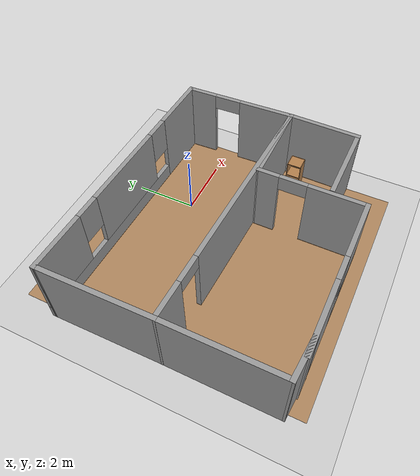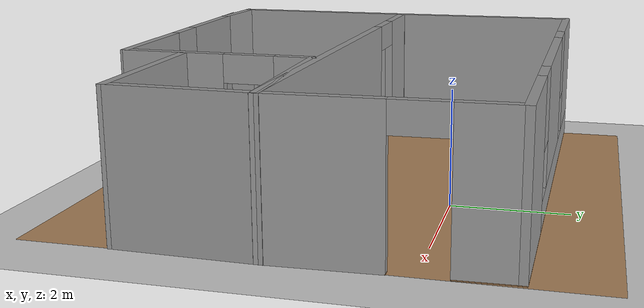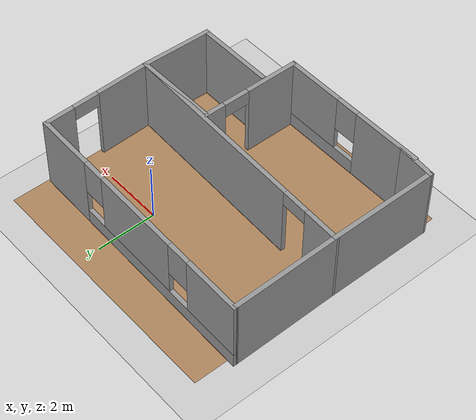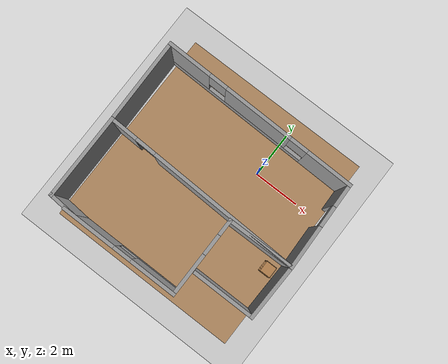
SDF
<sdf version="1.6">
 <world name="default">
  <light name="sun" type="directional">
   <pose>0 0 10 0 -0 0</pose>
   <diffuse>0.8 0.8 0.8 1</diffuse>
   <specular>0.1 0.1 0.1 1</specular>
   <attenuation>
    <range>1000</range>
    <constant>0.9</constant>
    <linear>0.01</linear>
    <quadratic>0.001</quadratic>
   </attenuation>
   <direction>-0.5 0.5 -1</direction>
  </light>
  <model name="ground_plane">
   <static>1</static>
   <link name="link">
    <collision name="collision">
     <geometry><plane><normal>0 0 1</normal><size>100 100</size></plane></geometry>
     <surface><friction><ode><mu>100</mu><mu2>50</mu2></ode></friction></surface>
    </collision>
    <visual name="visual">
     <cast_shadows>0</cast_shadows>
     <geometry><plane><normal>0 0 1</normal><size>100 100</size></plane></geometry>
     <material>
      <script><uri>file://media/materials/scripts/gazebo.material</uri><name>Gazebo/Grey</name></script>
     </material>
    </visual>
   </link>
  </model>
  <gravity>0 0 -9.8</gravity>
  <magnetic_field>6e-06 2.3e-05 -4.2e-05</magnetic_field>
  <atmosphere type="adiabatic"/>
  <physics name="default_physics" default="0" type="ode">
   <max_step_size>0.001</max_step_size>
   <real_time_factor>1</real_time_factor>
   <real_time_update_rate>1000</real_time_update_rate>
  </physics>
  <scene><ambient>0.4 0.4 0.4 1</ambient><background>0.7 0.7 0.7 1</background><shadows>1</shadows></scene>
  <spherical_coordinates>
   <surface_model>EARTH_WGS84</surface_model>
   <latitude_deg>0</latitude_deg>
   <longitude_deg>0</longitude_deg>
   <elevation>0</elevation>
   <heading_deg>0</heading_deg>
  </spherical_coordinates>
  <model name="1B1B">
   <pose>-1.21418 -2.03491 0 0 -0 0</pose>
   <link name="Wall_10">
    <collision name="Wall_10_Collision">
     <geometry><box><size>2.96621 0.15 2.5</size></box></geometry>
     <pose>0 0 1.25 0 -0 0</pose>
    </collision>
    <visual name="Wall_10_Visual">
     <pose>0 0 1.25 0 -0 0</pose>
     <geometry><box><size>2.96621 0.15 2.5</size></box></geometry>
     <material>
      <script><uri>file://media/materials/scripts/gazebo.material</uri><name>Gazebo/Grey</name></script>
      <ambient>1 1 1 1</ambient>
     </material>
    </visual>
    <pose>2.92153 -0.237835 0 0 -0 0.009263</pose>
   </link>
   <link name="Wall_11">
    <collision name="Wall_11_Collision">
     <geometry><box><size>2.46754 0.15 2.5</size></box></geometry>
     <pose>0 0 1.25 0 -0 0</pose>
    </collision>
    <visual name="Wall_11_Visual">
     <pose>0 0 1.25 0 -0 0</pose>
     <geometry><box><size>2.46754 0.15 2.5</size></box></geometry>
     <material>
      <script><uri>file://media/materials/scripts/gazebo.material</uri><name>Gazebo/Grey</name></script>
      <ambient>1 1 1 1</ambient>
     </material>
    </visual>
    <pose>4.30349 -1.38349 0 0 0 -1.59331</pose>
   </link>
   <link name="Wall_14">
    <pose>-1.03727 -3.64081 0 0 -0 0</pose>
    <visual name="Wall_14_Visual_0">
     <pose>-1.43077 0 1.25 0 -0 0</pose>
     <geometry><box><size>2.38845 0.15 2.5</size></box></geometry>
     <material>
      <script><uri>file://media/materials/scripts/gazebo.material</uri><name>Gazebo/Grey</name></script>
      <ambient>1 1 1 1</ambient>
     </material>
    </visual>
    <collision name="Wall_14_Collision_0">
     <geometry><box><size>2.38845 0.15 2.5</size></box></geometry>
     <pose>-1.43077 0 1.25 0 -0 0</pose>
    </collision>
    <visual name="Wall_14_Visual_1">
     <pose>1.19423 0 0.25 0 -0 0</pose>
     <geometry><box><size>2.86155 0.15 0.5</size></box></geometry>
     <material>
      <script><uri>file://media/materials/scripts/gazebo.material</uri><name>Gazebo/Grey</name></script>
      <ambient>1 1 1 1</ambient>
     </material>
    </visual>
    <collision name="Wall_14_Collision_1">
     <geometry><box><size>2.86155 0.15 0.5</size></box></geometry>
     <pose>1.19423 0 0.25 0 -0 0</pose>
    </collision>
    <visual name="Wall_14_Visual_2">
     <pose>1.59423 0 1.5 0 -0 0</pose>
     <geometry><box><size>2.06155 0.15 2</size></box></geometry>
     <material>
      <script><uri>file://media/materials/scripts/gazebo.material</uri><name>Gazebo/Grey</name></script>
      <ambient>1 1 1 1</ambient>
     </material>
    </visual>
    <collision name="Wall_14_Collision_2">
     <geometry><box><size>2.06155 0.15 2</size></box></geometry>
     <pose>1.59423 0 1.5 0 -0 0</pose>
    </collision>
    <visual name="Wall_14_Visual_3">
     <pose>0.163452 0 1.9 0 -0 0</pose>
     <geometry><box><size>0.8 0.15 1.2</size></box></geometry>
     <material>
      <script><uri>file://media/materials/scripts/gazebo.material</uri><name>Gazebo/Grey</name></script>
      <ambient>1 1 1 1</ambient>
     </material>
    </visual>
    <collision name="Wall_14_Collision_3">
     <geometry><box><size>0.8 0.15 1.2</size></box></geometry>
     <pose>0.163452 0 1.9 0 -0 0</pose>
    </collision>
   </link>
   <link name="Wall_16">
    <collision name="Wall_16_Collision">
     <geometry><box><size>2.75 0.15 2.5</size></box></geometry>
     <pose>0 0 1.25 0 -0 0</pose>
    </collision>
    <visual name="Wall_16_Visual">
     <pose>0 0 1.25 0 -0 0</pose>
     <geometry><box><size>2.75 0.15 2.5</size></box></geometry>
     <material>
      <script><uri>file://media/materials/scripts/gazebo.material</uri><name>Gazebo/Grey</name></script>
      <ambient>1 1 1 1</ambient>
     </material>
    </visual>
    <pose>2.9774 -2.54218 0 0 -0 3.14159</pose>
   </link>
   <link name="Wall_18">
    <collision name="Wall_18_Collision">
     <geometry><box><size>1.34723 0.15 2.5</size></box></geometry>
     <pose>0 0 1.25 0 -0 0</pose>
    </collision>
    <visual name="Wall_18_Visual">
     <pose>0 0 1.25 0 -0 0</pose>
     <geometry><box><size>1.34723 0.15 2.5</size></box></geometry>
     <material>
      <script><uri>file://media/materials/scripts/gazebo.material</uri><name>Gazebo/Grey</name></script>
      <ambient>1 1 1 1</ambient>
     </material>
    </visual>
    <pose>-3.68838 -3.59375 0 0 -0 3.06289</pose>
   </link>
   <link name="Wall_2">
    <pose>0.009174 -0.085736 0 0 0 -0.03237</pose>
    <visual name="Wall_2_Visual_0">
     <pose>-3.74047 0 1.25 0 -0 0</pose>
     <geometry><box><size>1.26219 0.15 2.5</size></box></geometry>
     <material>
      <script><uri>file://media/materials/scripts/gazebo.material</uri><name>Gazebo/Grey</name></script>
      <ambient>1 1 1 1</ambient>
     </material>
    </visual>
    <collision name="Wall_2_Collision_0">
     <geometry><box><size>1.26219 0.15 2.5</size></box></geometry>
     <pose>-3.74047 0 1.25 0 -0 0</pose>
    </collision>
    <visual name="Wall_2_Visual_1">
     <pose>1.08109 0 1.25 0 -0 0</pose>
     <geometry><box><size>6.58094 0.15 2.5</size></box></geometry>
     <material>
      <script><uri>file://media/materials/scripts/gazebo.material</uri><name>Gazebo/Grey</name></script>
      <ambient>1 1 1 1</ambient>
     </material>
    </visual>
    <collision name="Wall_2_Collision_1">
     <geometry><box><size>6.58094 0.15 2.5</size></box></geometry>
     <pose>1.08109 0 1.25 0 -0 0</pose>
    </collision>
    <visual name="Wall_2_Visual_2">
     <pose>-2.65937 0 2.25 0 -0 0</pose>
     <geometry><box><size>0.9 0.15 0.5</size></box></geometry>
     <material>
      <script><uri>file://media/materials/scripts/gazebo.material</uri><name>Gazebo/Grey</name></script>
      <ambient>1 1 1 1</ambient>
     </material>
    </visual>
    <collision name="Wall_2_Collision_2">
     <geometry><box><size>0.9 0.15 0.5</size></box></geometry>
     <pose>-2.65937 0 2.25 0 -0 0</pose>
    </collision>
   </link>
   <link name="Wall_3">
    <pose>4.26918 1.58961 0 0 -0 1.60407</pose>
    <visual name="Wall_3_Visual_0">
     <pose>-0.933363 0 1.25 0 -0 0</pose>
     <geometry><box><size>1.91409 0.15 2.5</size></box></geometry>
     <material>
      <script><uri>file://media/materials/scripts/gazebo.material</uri><name>Gazebo/Grey</name></script>
      <ambient>1 1 1 1</ambient>
     </material>
    </visual>
    <collision name="Wall_3_Collision_0">
     <geometry><box><size>1.91409 0.15 2.5</size></box></geometry>
     <pose>-0.933363 0 1.25 0 -0 0</pose>
    </collision>
    <visual name="Wall_3_Visual_1">
     <pose>1.40705 0 1.25 0 -0 0</pose>
     <geometry><box><size>0.966725 0.15 2.5</size></box></geometry>
     <material>
      <script><uri>file://media/materials/scripts/gazebo.material</uri><name>Gazebo/Grey</name></script>
      <ambient>1 1 1 1</ambient>
     </material>
    </visual>
    <collision name="Wall_3_Collision_1">
     <geometry><box><size>0.966725 0.15 2.5</size></box></geometry>
     <pose>1.40705 0 1.25 0 -0 0</pose>
    </collision>
    <visual name="Wall_3_Visual_2">
     <pose>0.473683 0 2.25 0 -0 0</pose>
     <geometry><box><size>0.9 0.15 0.5</size></box></geometry>
     <material>
      <script><uri>file://media/materials/scripts/gazebo.material</uri><name>Gazebo/Grey</name></script>
      <ambient>1 1 1 1</ambient>
     </material>
    </visual>
    <collision name="Wall_3_Collision_2">
     <geometry><box><size>0.9 0.15 0.5</size></box></geometry>
     <pose>0.473683 0 2.25 0 -0 0</pose>
    </collision>
   </link>
   <link name="Wall_4">
    <pose>-0.060961 3.56959 0 0 -0 3.1239</pose>
    <visual name="Wall_4_Visual_0">
     <pose>-3.31609 0 1.25 0 -0 0</pose>
     <geometry><box><size>2.05866 0.15 2.5</size></box></geometry>
     <material>
      <script><uri>file://media/materials/scripts/gazebo.material</uri><name>Gazebo/Grey</name></script>
      <ambient>1 1 1 1</ambient>
     </material>
    </visual>
    <collision name="Wall_4_Collision_0">
     <geometry><box><size>2.05866 0.15 2.5</size></box></geometry>
     <pose>-3.31609 0 1.25 0 -0 0</pose>
    </collision>
    <visual name="Wall_4_Visual_1">
     <pose>1.02933 0 0.25 0 -0 0</pose>
     <geometry><box><size>6.63218 0.15 0.5</size></box></geometry>
     <material>
      <script><uri>file://media/materials/scripts/gazebo.material</uri><name>Gazebo/Grey</name></script>
      <ambient>1 1 1 1</ambient>
     </material>
    </visual>
    <collision name="Wall_4_Collision_1">
     <geometry><box><size>6.63218 0.15 0.5</size></box></geometry>
     <pose>1.02933 0 0.25 0 -0 0</pose>
    </collision>
    <visual name="Wall_4_Visual_2">
     <pose>0.034265 0 1.5 0 -0 0</pose>
     <geometry><box><size>3.04205 0.15 2</size></box></geometry>
     <material>
      <script><uri>file://media/materials/scripts/gazebo.material</uri><name>Gazebo/Grey</name></script>
      <ambient>1 1 1 1</ambient>
     </material>
    </visual>
    <collision name="Wall_4_Collision_2">
     <geometry><box><size>3.04205 0.15 2</size></box></geometry>
     <pose>0.034265 0 1.5 0 -0 0</pose>
    </collision>
    <visual name="Wall_4_Visual_3">
     <pose>3.35035 0 1.5 0 -0 0</pose>
     <geometry><box><size>1.99013 0.15 2</size></box></geometry>
     <material>
      <script><uri>file://media/materials/scripts/gazebo.material</uri><name>Gazebo/Grey</name></script>
      <ambient>1 1 1 1</ambient>
     </material>
    </visual>
    <collision name="Wall_4_Collision_3">
     <geometry><box><size>1.99013 0.15 2</size></box></geometry>
     <pose>3.35035 0 1.5 0 -0 0</pose>
    </collision>
    <visual name="Wall_4_Visual_4">
     <pose>-1.88676 0 1.9 0 -0 0</pose>
     <geometry><box><size>0.8 0.15 1.2</size></box></geometry>
     <material>
      <script><uri>file://media/materials/scripts/gazebo.material</uri><name>Gazebo/Grey</name></script>
      <ambient>1 1 1 1</ambient>
     </material>
    </visual>
    <collision name="Wall_4_Collision_4">
     <geometry><box><size>0.8 0.15 1.2</size></box></geometry>
     <pose>-1.88676 0 1.9 0 -0 0</pose>
    </collision>
    <visual name="Wall_4_Visual_5">
     <pose>1.95529 0 1.9 0 -0 0</pose>
     <geometry><box><size>0.8 0.15 1.2</size></box></geometry>
     <material>
      <script><uri>file://media/materials/scripts/gazebo.material</uri><name>Gazebo/Grey</name></script>
      <ambient>1 1 1 1</ambient>
     </material>
    </visual>
    <collision name="Wall_4_Collision_5">
     <geometry><box><size>0.8 0.15 1.2</size></box></geometry>
     <pose>1.95529 0 1.9 0 -0 0</pose>
    </collision>
   </link>
   <link name="Wall_5">
    <collision name="Wall_5_Collision">
     <geometry><box><size>3.65214 0.15 2.5</size></box></geometry>
     <pose>0 0 1.25 0 -0 0</pose>
    </collision>
    <visual name="Wall_5_Visual">
     <pose>0 0 1.25 0 -0 0</pose>
     <geometry><box><size>3.65214 0.15 2.5</size></box></geometry>
     <material>
      <script><uri>file://media/materials/scripts/gazebo.material</uri><name>Gazebo/Grey</name></script>
      <ambient>1 1 1 1</ambient>
     </material>
    </visual>
    <pose>-4.30792 1.80424 0 0 0 -1.55778</pose>
   </link>
   <link name="Wall_6">
    <collision name="Wall_6_Collision">
     <geometry><box><size>3.75 0.15 2.5</size></box></geometry>
     <pose>0 0 1.25 0 -0 0</pose>
    </collision>
    <visual name="Wall_6_Visual">
     <pose>0 0 1.25 0 -0 0</pose>
     <geometry><box><size>3.75 0.15 2.5</size></box></geometry>
     <material>
      <script><uri>file://media/materials/scripts/gazebo.material</uri><name>Gazebo/Grey</name></script>
      <ambient>1 1 1 1</ambient>
     </material>
    </visual>
    <pose>-4.28514 -1.74668 0 0 0 -1.5708</pose>
   </link>
   <link name="Wall_9">
    <pose>1.51348 -1.92588 0 0 -0 1.5708</pose>
    <visual name="Wall_9_Visual_0">
     <pose>-0.822685 0 1.25 0 -0 0</pose>
     <geometry><box><size>1.85463 0.15 2.5</size></box></geometry>
     <material>
      <script><uri>file://media/materials/scripts/gazebo.material</uri><name>Gazebo/Grey</name></script>
      <ambient>1 1 1 1</ambient>
     </material>
    </visual>
    <collision name="Wall_9_Collision_0">
     <geometry><box><size>1.85463 0.15 2.5</size></box></geometry>
     <pose>-0.822685 0 1.25 0 -0 0</pose>
    </collision>
    <visual name="Wall_9_Visual_1">
     <pose>1.37732 0 1.25 0 -0 0</pose>
     <geometry><box><size>0.74537 0.15 2.5</size></box></geometry>
     <material>
      <script><uri>file://media/materials/scripts/gazebo.material</uri><name>Gazebo/Grey</name></script>
      <ambient>1 1 1 1</ambient>
     </material>
    </visual>
    <collision name="Wall_9_Collision_1">
     <geometry><box><size>0.74537 0.15 2.5</size></box></geometry>
     <pose>1.37732 0 1.25 0 -0 0</pose>
    </collision>
    <visual name="Wall_9_Visual_2">
     <pose>0.55463 0 2.25 0 -0 0</pose>
     <geometry><box><size>0.9 0.15 0.5</size></box></geometry>
     <material>
      <script><uri>file://media/materials/scripts/gazebo.material</uri><name>Gazebo/Grey</name></script>
      <ambient>1 1 1 1</ambient>
     </material>
    </visual>
    <collision name="Wall_9_Collision_2">
     <geometry><box><size>0.9 0.15 0.5</size></box></geometry>
     <pose>0.55463 0 2.25 0 -0 0</pose>
    </collision>
   </link>
   <static>1</static>
  </model>
  <model name="floor">
   <link name="Floor">
    <pose>0.3 0 0.01 0 -0 0</pose>
    <visual name="Floor">
     <transparency>0.2</transparency>
     <geometry><plane><normal>0 0 1</normal><size>8.5 9</size></plane></geometry>
     <material>
      <script><uri>file://media/materials/scripts/gazebo.material</uri><name>Gazebo/WoodFloor</name></script>
     </material>
    </visual>
    <velocity_decay><linear>0</linear><angular>0</angular></velocity_decay>
   </link>
   <static>1</static>
   <pose>-1.42018 -1.68142 0 0 -0 0</pose>
  </model>
  <model name="cabinet_5">
   <static>1</static>
   <link name="cabinet_bottom_plate">
    <inertial>
     <pose>0 0 -1 0 -0 0</pose>
     <inertia><ixx>2.05</ixx><ixy>0</ixy><ixz>0</ixz><iyy>2.05</iyy><iyz>0</iyz><izz>2.05</izz></inertia>
     <mass>25</mass>
    </inertial>
    <collision name="cabinet_bottom_plate_geom">
     <pose>0 0 0.01 0 -0 0</pose>
     <geometry><box><size>0.45 0.45 0.02</size></box></geometry>
    </collision>
    <visual name="cabinet_bottom_plate_geom_visual">
     <pose>0 0 0.01 0 -0 0</pose>
     <geometry><box><size>0.45 0.45 0.02</size></box></geometry>
     <material>
      <script><uri>file://media/materials/scripts/gazebo.material</uri><name>Gazebo/Wood</name></script>
     </material>
    </visual>
    <collision name="cabinet_bottom_plate_geom_cabinet_back_plate">
     <pose>0.235 0 0.51 0 -0 0</pose>
     <geometry><box><size>0.02 0.45 1.02</size></box></geometry>
    </collision>
    <visual name="cabinet_bottom_plate_geom_cabinet_back_plate_visual">
     <pose>0.235 0 0.51 0 -0 0</pose>
     <geometry><box><size>0.02 0.45 1.02</size></box></geometry>
     <material>
      <script><uri>file://media/materials/scripts/gazebo.material</uri><name>Gazebo/Wood</name></script>
     </material>
    </visual>
    <collision name="cabinet_bottom_plate_geom_cabinet_left_plate">
     <pose>0 0.235 0.51 0 -0 0</pose>
     <geometry><box><size>0.45 0.02 1.02</size></box></geometry>
    </collision>
    <visual name="cabinet_bottom_plate_geom_cabinet_left_plate_visual">
     <pose>0 0.235 0.51 0 -0 0</pose>
     <geometry><box><size>0.45 0.02 1.02</size></box></geometry>
     <material>
      <script><uri>file://media/materials/scripts/gazebo.material</uri><name>Gazebo/Wood</name></script>
     </material>
    </visual>
    <collision name="cabinet_bottom_plate_geom_cabinet_middle_plate">
     <pose>0 0 0.51 0 -0 0</pose>
     <geometry><box><size>0.45 0.45 0.02</size></box></geometry>
    </collision>
    <visual name="cabinet_bottom_plate_geom_cabinet_middle_plate_visual">
     <pose>0 0 0.51 0 -0 0</pose>
     <geometry><box><size>0.45 0.45 0.02</size></box></geometry>
     <material>
      <script><uri>file://media/materials/scripts/gazebo.material</uri><name>Gazebo/Wood</name></script>
     </material>
    </visual>
    <collision name="cabinet_bottom_plate_geom_cabinet_right_plate">
     <pose>0 -0.235 0.51 0 -0 0</pose>
     <geometry><box><size>0.45 0.02 1.02</size></box></geometry>
    </collision>
    <visual name="cabinet_bottom_plate_geom_cabinet_right_plate_visual">
     <pose>0 -0.235 0.51 0 -0 0</pose>
     <geometry><box><size>0.45 0.02 1.02</size></box></geometry>
     <material>
      <script><uri>file://media/materials/scripts/gazebo.material</uri><name>Gazebo/Wood</name></script>
     </material>
    </visual>
    <collision name="cabinet_bottom_plate_geom_cabinet_top_plate">
     <pose>0 0 1.01 0 -0 0</pose>
     <geometry><box><size>0.45 0.45 0.02</size></box></geometry>
    </collision>
    <visual name="cabinet_bottom_plate_geom_cabinet_top_plate_visual">
     <pose>0 0 1.01 0 -0 0</pose>
     <geometry><box><size>0.45 0.45 0.02</size></box></geometry>
     <material>
      <script><uri>file://media/materials/scripts/gazebo.material</uri><name>Gazebo/Wood</name></script>
     </material>
    </visual>
   </link>
   <pose>2.61858 -2.80571 0 0 -0 0</pose>
  </model>
  <light name="user_directional_light_0" type="directional">
   <pose>2.01603 -1.34752 1 0 -0 0</pose>
   <diffuse>0.5 0.5 0.5 1</diffuse>
   <specular>0.1 0.1 0.1 1</specular>
   <direction>0.1 0.1 -0.9</direction>
   <attenuation>
    <range>20</range>
    <constant>0.5</constant>
    <linear>0.01</linear>
    <quadratic>0.001</quadratic>
   </attenuation>
  </light>
 </world>
</sdf>
